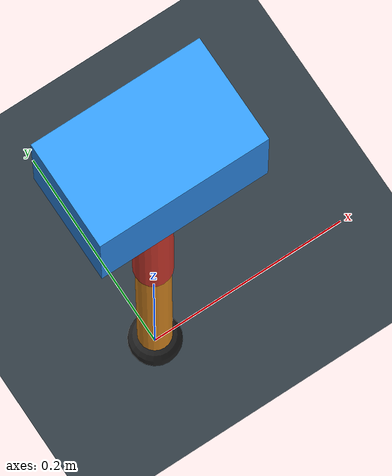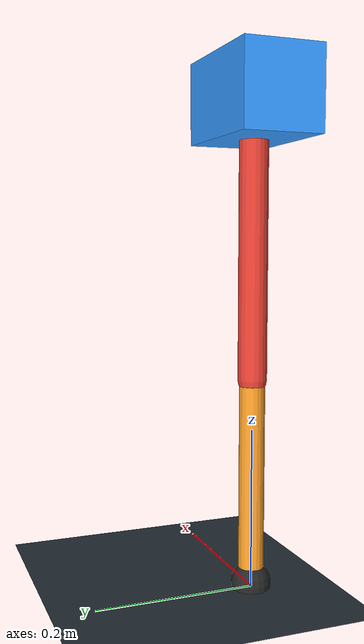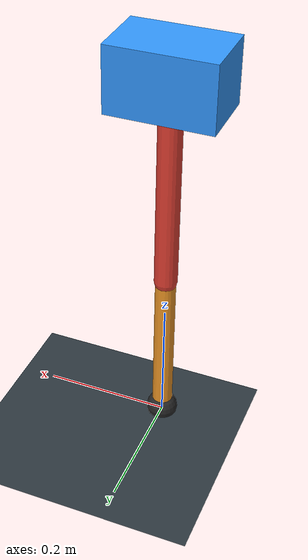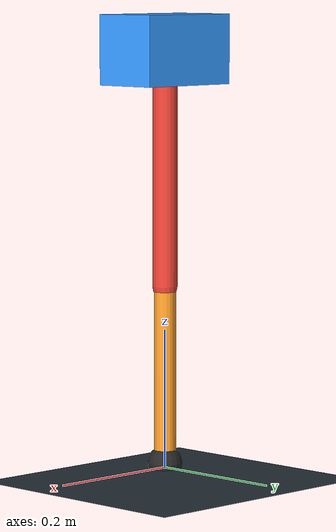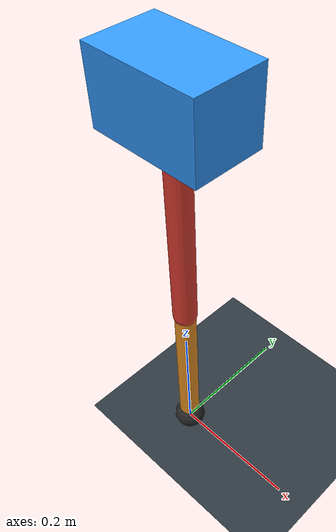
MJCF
<mujoco model="single_axis_two_bar">
  <compiler angle="radian" inertiafromgeom="true"/>
  <option timestep="0.001" integrator="implicitfast" gravity="0 0 -9.81"/>
  <default>
    <joint damping="0.08"/>
    <geom friction="1.2 0.01 0.0001" condim="3"/>
  </default>
  <worldbody>
    <geom name="floor" type="plane" size="5 5 0.1" rgba="0.18 0.22 0.25 1"/>
    <body name="carriage" pos="0 0 0.6014908230780187">
      <joint name="pole_slide" type="slide" axis="0 0 1"/>
      <geom name="payload" type="box" size="0.08 0.05 0.05" mass="2.879312236511746" rgba="0.2 0.6 1 1"/>
      <body name="thigh" pos="0 0 0">
        <joint name="hip" type="hinge" axis="0 1 0"/>
        <geom name="thigh_link" type="capsule" fromto="0 0 0 0 0 -0.33873681833908964" size="0.018" mass="0.2413544590787445" rgba="0.9 0.25 0.2 1"/>
        <body name="shank" pos="0 0 -0.33873681833908964">
          <joint name="knee" type="hinge" axis="0 1 0"/>
          <geom name="shank_link" type="capsule" fromto="0 0 0 0 0 -0.2555836178238162" size="0.016" mass="0.18210670493901027" rgba="0.95 0.6 0.15 1"/>
          <geom name="foot" type="sphere" pos="0 0 -0.2555836178238162" size="0.025" mass="0.03" rgba="0.15 0.15 0.15 1"/>
          <site name="toe" pos="0 0 -0.2555836178238162" size="0.008"/>
        </body>
      </body>
    </body>
  </worldbody>
  <actuator>
    <motor name="hip_motor" joint="hip" ctrlrange="-41.25213814976619 41.25213814976619"/>
    <motor name="knee_motor" joint="knee" ctrlrange="-108.70227484999744 108.70227484999744"/>
  </actuator>
</mujoco>
